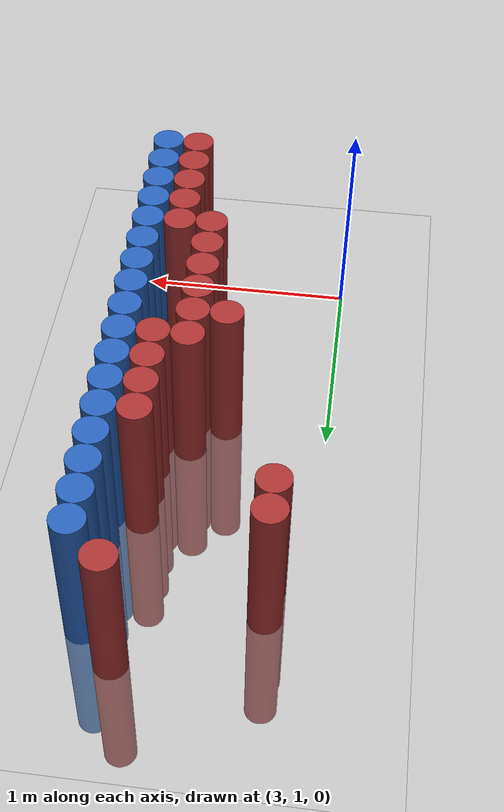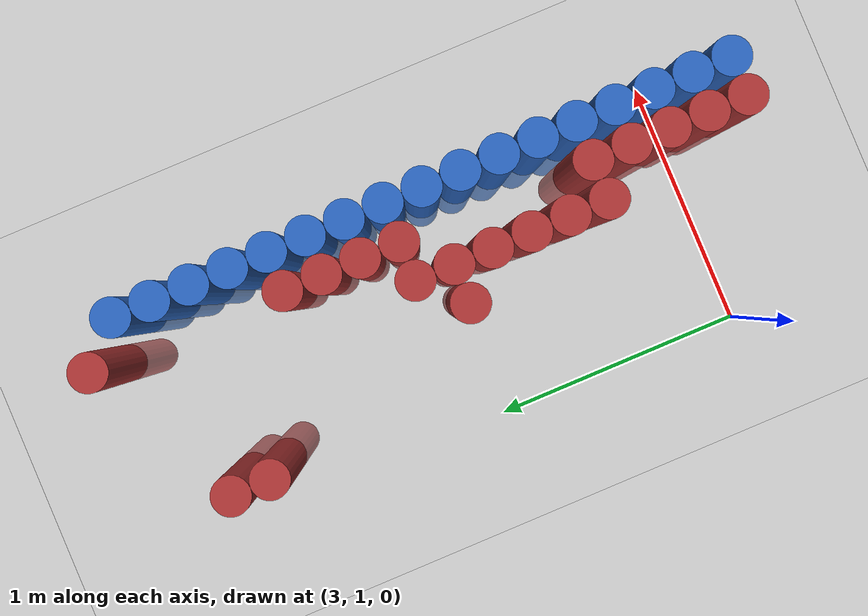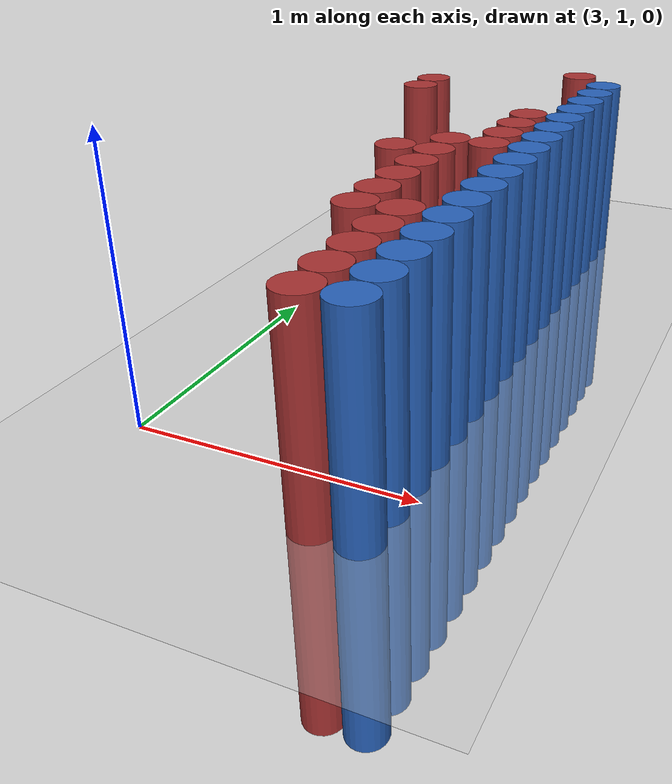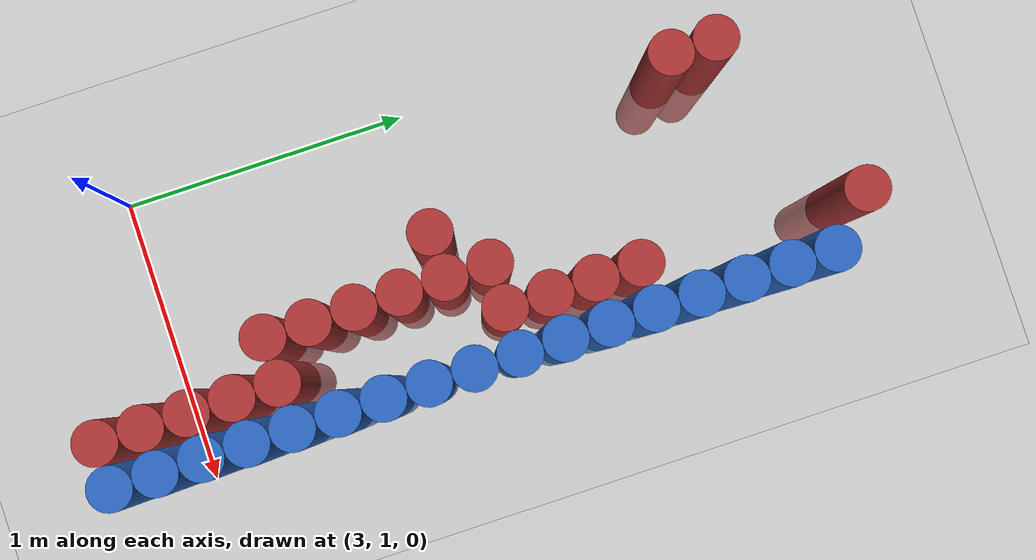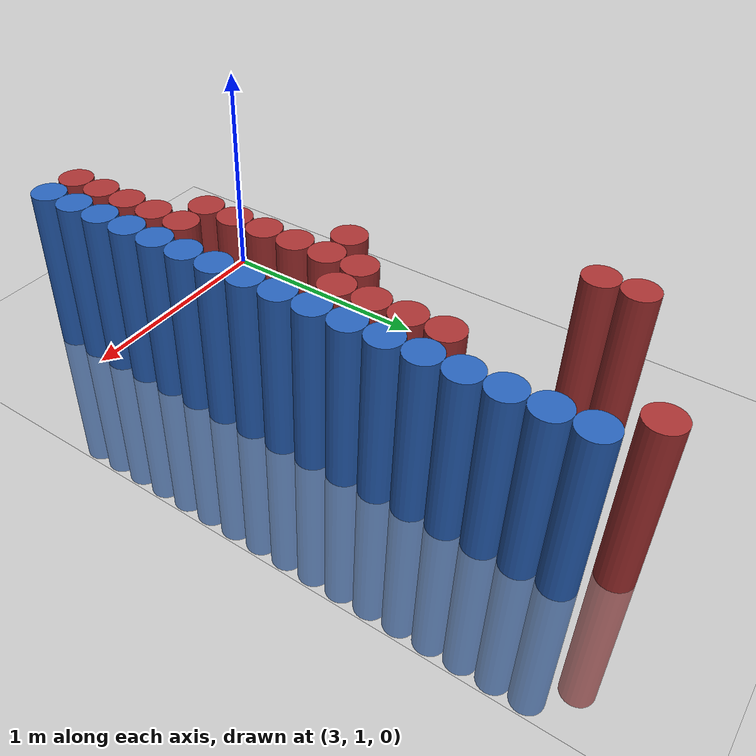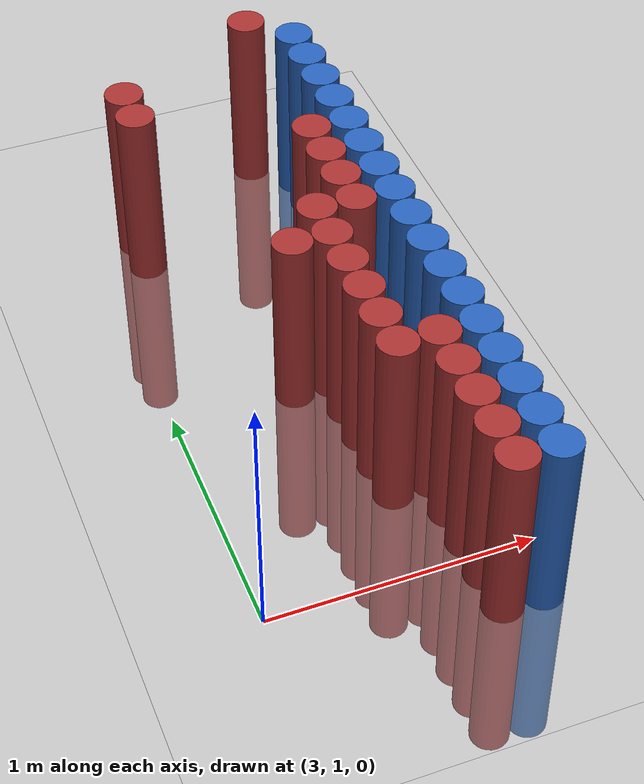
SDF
<sdf version="1.6">
 <world name="default">
  <model name="ground_plane">
   <static>1</static>
   <link name="link">
    <collision name="collision">
     <geometry><plane><normal>0 0 1</normal><size>100 100</size></plane></geometry>
     <surface><friction><ode><mu>100</mu><mu2>50</mu2></ode></friction></surface>
    </collision>
    <visual name="visual">
     <cast_shadows>0</cast_shadows>
     <geometry><plane><normal>0 0 1</normal><size>100 100</size></plane></geometry>
     <material>
      <script><uri>file://media/materials/scripts/gazebo.material</uri><name>Gazebo/Grey</name></script>
     </material>
    </visual>
   </link>
  </model>
  <model name="unit_cylinder_126">
   <static>1</static>
   <pose>3.925000 0.925000 0.000000 0.000000 0.000000 0.000000</pose>
   <link name="link">
    <inertial>
     <mass>1</mass>
     <inertia><ixx>0.145833</ixx><ixy>0</ixy><ixz>0</ixz><iyy>0.145833</iyy><iyz>0</iyz><izz>0.125</izz></inertia>
    </inertial>
    <collision name="collision">
     <geometry><cylinder><radius>0.075000</radius><length>1.5</length></cylinder></geometry>
    </collision>
    <visual name="visual">
     <geometry><cylinder><radius>0.075000</radius><length>1.5</length></cylinder></geometry>
     <material>
      <ambient>0.152000 0.379000 0.720000 1</ambient>
      <diffuse>0.152000 0.379000 0.720000 1</diffuse>
     </material>
     <material>
      <script><name>Gazebo/Grey</name><uri>file://media/materials/scripts/gazebo.material</uri></script>
     </material>
    </visual>
   </link>
  </model>
  <model name="unit_cylinder_128">
   <static>1</static>
   <pose>3.925000 1.075000 0.000000 0.000000 0.000000 0.000000</pose>
   <link name="link">
    <inertial>
     <mass>1</mass>
     <inertia><ixx>0.145833</ixx><ixy>0</ixy><ixz>0</ixz><iyy>0.145833</iyy><iyz>0</iyz><izz>0.125</izz></inertia>
    </inertial>
    <collision name="collision">
     <geometry><cylinder><radius>0.075000</radius><length>1.5</length></cylinder></geometry>
    </collision>
    <visual name="visual">
     <geometry><cylinder><radius>0.075000</radius><length>1.5</length></cylinder></geometry>
     <material>
      <ambient>0.152000 0.379000 0.720000 1</ambient>
      <diffuse>0.152000 0.379000 0.720000 1</diffuse>
     </material>
     <material>
      <script><name>Gazebo/Grey</name><uri>file://media/materials/scripts/gazebo.material</uri></script>
     </material>
    </visual>
   </link>
  </model>
  <model name="unit_cylinder_130">
   <static>1</static>
   <pose>3.925000 1.225000 0.000000 0.000000 0.000000 0.000000</pose>
   <link name="link">
    <inertial>
     <mass>1</mass>
     <inertia><ixx>0.145833</ixx><ixy>0</ixy><ixz>0</ixz><iyy>0.145833</iyy><iyz>0</iyz><izz>0.125</izz></inertia>
    </inertial>
    <collision name="collision">
     <geometry><cylinder><radius>0.075000</radius><length>1.5</length></cylinder></geometry>
    </collision>
    <visual name="visual">
     <geometry><cylinder><radius>0.075000</radius><length>1.5</length></cylinder></geometry>
     <material>
      <ambient>0.152000 0.379000 0.720000 1</ambient>
      <diffuse>0.152000 0.379000 0.720000 1</diffuse>
     </material>
     <material>
      <script><name>Gazebo/Grey</name><uri>file://media/materials/scripts/gazebo.material</uri></script>
     </material>
    </visual>
   </link>
  </model>
  <model name="unit_cylinder_132">
   <static>1</static>
   <pose>3.925000 1.375000 0.000000 0.000000 0.000000 0.000000</pose>
   <link name="link">
    <inertial>
     <mass>1</mass>
     <inertia><ixx>0.145833</ixx><ixy>0</ixy><ixz>0</ixz><iyy>0.145833</iyy><iyz>0</iyz><izz>0.125</izz></inertia>
    </inertial>
    <collision name="collision">
     <geometry><cylinder><radius>0.075000</radius><length>1.5</length></cylinder></geometry>
    </collision>
    <visual name="visual">
     <geometry><cylinder><radius>0.075000</radius><length>1.5</length></cylinder></geometry>
     <material>
      <ambient>0.152000 0.379000 0.720000 1</ambient>
      <diffuse>0.152000 0.379000 0.720000 1</diffuse>
     </material>
     <material>
      <script><name>Gazebo/Grey</name><uri>file://media/materials/scripts/gazebo.material</uri></script>
     </material>
    </visual>
   </link>
  </model>
  <model name="unit_cylinder_134">
   <static>1</static>
   <pose>3.925000 1.525000 0.000000 0.000000 0.000000 0.000000</pose>
   <link name="link">
    <inertial>
     <mass>1</mass>
     <inertia><ixx>0.145833</ixx><ixy>0</ixy><ixz>0</ixz><iyy>0.145833</iyy><iyz>0</iyz><izz>0.125</izz></inertia>
    </inertial>
    <collision name="collision">
     <geometry><cylinder><radius>0.075000</radius><length>1.5</length></cylinder></geometry>
    </collision>
    <visual name="visual">
     <geometry><cylinder><radius>0.075000</radius><length>1.5</length></cylinder></geometry>
     <material>
      <ambient>0.152000 0.379000 0.720000 1</ambient>
      <diffuse>0.152000 0.379000 0.720000 1</diffuse>
     </material>
     <material>
      <script><name>Gazebo/Grey</name><uri>file://media/materials/scripts/gazebo.material</uri></script>
     </material>
    </visual>
   </link>
  </model>
  <model name="unit_cylinder_136">
   <static>1</static>
   <pose>3.925000 1.675000 0.000000 0.000000 0.000000 0.000000</pose>
   <link name="link">
    <inertial>
     <mass>1</mass>
     <inertia><ixx>0.145833</ixx><ixy>0</ixy><ixz>0</ixz><iyy>0.145833</iyy><iyz>0</iyz><izz>0.125</izz></inertia>
    </inertial>
    <collision name="collision">
     <geometry><cylinder><radius>0.075000</radius><length>1.5</length></cylinder></geometry>
    </collision>
    <visual name="visual">
     <geometry><cylinder><radius>0.075000</radius><length>1.5</length></cylinder></geometry>
     <material>
      <ambient>0.152000 0.379000 0.720000 1</ambient>
      <diffuse>0.152000 0.379000 0.720000 1</diffuse>
     </material>
     <material>
      <script><name>Gazebo/Grey</name><uri>file://media/materials/scripts/gazebo.material</uri></script>
     </material>
    </visual>
   </link>
  </model>
  <model name="unit_cylinder_138">
   <static>1</static>
   <pose>3.925000 1.825000 0.000000 0.000000 0.000000 0.000000</pose>
   <link name="link">
    <inertial>
     <mass>1</mass>
     <inertia><ixx>0.145833</ixx><ixy>0</ixy><ixz>0</ixz><iyy>0.145833</iyy><iyz>0</iyz><izz>0.125</izz></inertia>
    </inertial>
    <collision name="collision">
     <geometry><cylinder><radius>0.075000</radius><length>1.5</length></cylinder></geometry>
    </collision>
    <visual name="visual">
     <geometry><cylinder><radius>0.075000</radius><length>1.5</length></cylinder></geometry>
     <material>
      <ambient>0.152000 0.379000 0.720000 1</ambient>
      <diffuse>0.152000 0.379000 0.720000 1</diffuse>
     </material>
     <material>
      <script><name>Gazebo/Grey</name><uri>file://media/materials/scripts/gazebo.material</uri></script>
     </material>
    </visual>
   </link>
  </model>
  <model name="unit_cylinder_140">
   <static>1</static>
   <pose>3.925000 1.975000 0.000000 0.000000 0.000000 0.000000</pose>
   <link name="link">
    <inertial>
     <mass>1</mass>
     <inertia><ixx>0.145833</ixx><ixy>0</ixy><ixz>0</ixz><iyy>0.145833</iyy><iyz>0</iyz><izz>0.125</izz></inertia>
    </inertial>
    <collision name="collision">
     <geometry><cylinder><radius>0.075000</radius><length>1.5</length></cylinder></geometry>
    </collision>
    <visual name="visual">
     <geometry><cylinder><radius>0.075000</radius><length>1.5</length></cylinder></geometry>
     <material>
      <ambient>0.152000 0.379000 0.720000 1</ambient>
      <diffuse>0.152000 0.379000 0.720000 1</diffuse>
     </material>
     <material>
      <script><name>Gazebo/Grey</name><uri>file://media/materials/scripts/gazebo.material</uri></script>
     </material>
    </visual>
   </link>
  </model>
  <model name="unit_cylinder_142">
   <static>1</static>
   <pose>3.925000 2.125000 0.000000 0.000000 0.000000 0.000000</pose>
   <link name="link">
    <inertial>
     <mass>1</mass>
     <inertia><ixx>0.145833</ixx><ixy>0</ixy><ixz>0</ixz><iyy>0.145833</iyy><iyz>0</iyz><izz>0.125</izz></inertia>
    </inertial>
    <collision name="collision">
     <geometry><cylinder><radius>0.075000</radius><length>1.5</length></cylinder></geometry>
    </collision>
    <visual name="visual">
     <geometry><cylinder><radius>0.075000</radius><length>1.5</length></cylinder></geometry>
     <material>
      <ambient>0.152000 0.379000 0.720000 1</ambient>
      <diffuse>0.152000 0.379000 0.720000 1</diffuse>
     </material>
     <material>
      <script><name>Gazebo/Grey</name><uri>file://media/materials/scripts/gazebo.material</uri></script>
     </material>
    </visual>
   </link>
  </model>
  <model name="unit_cylinder_144">
   <static>1</static>
   <pose>3.925000 2.275000 0.000000 0.000000 0.000000 0.000000</pose>
   <link name="link">
    <inertial>
     <mass>1</mass>
     <inertia><ixx>0.145833</ixx><ixy>0</ixy><ixz>0</ixz><iyy>0.145833</iyy><iyz>0</iyz><izz>0.125</izz></inertia>
    </inertial>
    <collision name="collision">
     <geometry><cylinder><radius>0.075000</radius><length>1.5</length></cylinder></geometry>
    </collision>
    <visual name="visual">
     <geometry><cylinder><radius>0.075000</radius><length>1.5</length></cylinder></geometry>
     <material>
      <ambient>0.152000 0.379000 0.720000 1</ambient>
      <diffuse>0.152000 0.379000 0.720000 1</diffuse>
     </material>
     <material>
      <script><name>Gazebo/Grey</name><uri>file://media/materials/scripts/gazebo.material</uri></script>
     </material>
    </visual>
   </link>
  </model>
  <model name="unit_cylinder_146">
   <static>1</static>
   <pose>3.925000 2.425000 0.000000 0.000000 0.000000 0.000000</pose>
   <link name="link">
    <inertial>
     <mass>1</mass>
     <inertia><ixx>0.145833</ixx><ixy>0</ixy><ixz>0</ixz><iyy>0.145833</iyy><iyz>0</iyz><izz>0.125</izz></inertia>
    </inertial>
    <collision name="collision">
     <geometry><cylinder><radius>0.075000</radius><length>1.5</length></cylinder></geometry>
    </collision>
    <visual name="visual">
     <geometry><cylinder><radius>0.075000</radius><length>1.5</length></cylinder></geometry>
     <material>
      <ambient>0.152000 0.379000 0.720000 1</ambient>
      <diffuse>0.152000 0.379000 0.720000 1</diffuse>
     </material>
     <material>
      <script><name>Gazebo/Grey</name><uri>file://media/materials/scripts/gazebo.material</uri></script>
     </material>
    </visual>
   </link>
  </model>
  <model name="unit_cylinder_148">
   <static>1</static>
   <pose>3.925000 2.575000 0.000000 0.000000 0.000000 0.000000</pose>
   <link name="link">
    <inertial>
     <mass>1</mass>
     <inertia><ixx>0.145833</ixx><ixy>0</ixy><ixz>0</ixz><iyy>0.145833</iyy><iyz>0</iyz><izz>0.125</izz></inertia>
    </inertial>
    <collision name="collision">
     <geometry><cylinder><radius>0.075000</radius><length>1.5</length></cylinder></geometry>
    </collision>
    <visual name="visual">
     <geometry><cylinder><radius>0.075000</radius><length>1.5</length></cylinder></geometry>
     <material>
      <ambient>0.152000 0.379000 0.720000 1</ambient>
      <diffuse>0.152000 0.379000 0.720000 1</diffuse>
     </material>
     <material>
      <script><name>Gazebo/Grey</name><uri>file://media/materials/scripts/gazebo.material</uri></script>
     </material>
    </visual>
   </link>
  </model>
  <model name="unit_cylinder_150">
   <static>1</static>
   <pose>3.925000 2.725000 0.000000 0.000000 0.000000 0.000000</pose>
   <link name="link">
    <inertial>
     <mass>1</mass>
     <inertia><ixx>0.145833</ixx><ixy>0</ixy><ixz>0</ixz><iyy>0.145833</iyy><iyz>0</iyz><izz>0.125</izz></inertia>
    </inertial>
    <collision name="collision">
     <geometry><cylinder><radius>0.075000</radius><length>1.5</length></cylinder></geometry>
    </collision>
    <visual name="visual">
     <geometry><cylinder><radius>0.075000</radius><length>1.5</length></cylinder></geometry>
     <material>
      <ambient>0.152000 0.379000 0.720000 1</ambient>
      <diffuse>0.152000 0.379000 0.720000 1</diffuse>
     </material>
     <material>
      <script><name>Gazebo/Grey</name><uri>file://media/materials/scripts/gazebo.material</uri></script>
     </material>
    </visual>
   </link>
  </model>
  <model name="unit_cylinder_152">
   <static>1</static>
   <pose>3.925000 2.875000 0.000000 0.000000 0.000000 0.000000</pose>
   <link name="link">
    <inertial>
     <mass>1</mass>
     <inertia><ixx>0.145833</ixx><ixy>0</ixy><ixz>0</ixz><iyy>0.145833</iyy><iyz>0</iyz><izz>0.125</izz></inertia>
    </inertial>
    <collision name="collision">
     <geometry><cylinder><radius>0.075000</radius><length>1.5</length></cylinder></geometry>
    </collision>
    <visual name="visual">
     <geometry><cylinder><radius>0.075000</radius><length>1.5</length></cylinder></geometry>
     <material>
      <ambient>0.152000 0.379000 0.720000 1</ambient>
      <diffuse>0.152000 0.379000 0.720000 1</diffuse>
     </material>
     <material>
      <script><name>Gazebo/Grey</name><uri>file://media/materials/scripts/gazebo.material</uri></script>
     </material>
    </visual>
   </link>
  </model>
  <model name="unit_cylinder_154">
   <static>1</static>
   <pose>3.925000 3.025000 0.000000 0.000000 0.000000 0.000000</pose>
   <link name="link">
    <inertial>
     <mass>1</mass>
     <inertia><ixx>0.145833</ixx><ixy>0</ixy><ixz>0</ixz><iyy>0.145833</iyy><iyz>0</iyz><izz>0.125</izz></inertia>
    </inertial>
    <collision name="collision">
     <geometry><cylinder><radius>0.075000</radius><length>1.5</length></cylinder></geometry>
    </collision>
    <visual name="visual">
     <geometry><cylinder><radius>0.075000</radius><length>1.5</length></cylinder></geometry>
     <material>
      <ambient>0.152000 0.379000 0.720000 1</ambient>
      <diffuse>0.152000 0.379000 0.720000 1</diffuse>
     </material>
     <material>
      <script><name>Gazebo/Grey</name><uri>file://media/materials/scripts/gazebo.material</uri></script>
     </material>
    </visual>
   </link>
  </model>
  <model name="unit_cylinder_156">
   <static>1</static>
   <pose>3.925000 3.175000 0.000000 0.000000 0.000000 0.000000</pose>
   <link name="link">
    <inertial>
     <mass>1</mass>
     <inertia><ixx>0.145833</ixx><ixy>0</ixy><ixz>0</ixz><iyy>0.145833</iyy><iyz>0</iyz><izz>0.125</izz></inertia>
    </inertial>
    <collision name="collision">
     <geometry><cylinder><radius>0.075000</radius><length>1.5</length></cylinder></geometry>
    </collision>
    <visual name="visual">
     <geometry><cylinder><radius>0.075000</radius><length>1.5</length></cylinder></geometry>
     <material>
      <ambient>0.152000 0.379000 0.720000 1</ambient>
      <diffuse>0.152000 0.379000 0.720000 1</diffuse>
     </material>
     <material>
      <script><name>Gazebo/Grey</name><uri>file://media/materials/scripts/gazebo.material</uri></script>
     </material>
    </visual>
   </link>
  </model>
  <model name="unit_cylinder_384">
   <static>1</static>
   <pose>3.175000 2.875000 0.000000 0.000000 0.000000 0.000000</pose>
   <link name="link">
    <inertial>
     <mass>1</mass>
     <inertia><ixx>0.145833</ixx><ixy>0</ixy><ixz>0</ixz><iyy>0.145833</iyy><iyz>0</iyz><izz>0.125</izz></inertia>
    </inertial>
    <collision name="collision">
     <geometry><cylinder><radius>0.075000</radius><length>1.5</length></cylinder></geometry>
    </collision>
    <visual name="visual">
     <geometry><cylinder><radius>0.075000</radius><length>1.5</length></cylinder></geometry>
     <material>
      <ambient>0.648000 0.192000 0.192000 1</ambient>
      <diffuse>0.648000 0.192000 0.192000 1</diffuse>
     </material>
     <material>
      <script><name>Gazebo/Grey</name><uri>file://media/materials/scripts/gazebo.material</uri></script>
     </material>
    </visual>
   </link>
  </model>
  <model name="unit_cylinder_385">
   <static>1</static>
   <pose>3.175000 3.025000 0.000000 0.000000 0.000000 0.000000</pose>
   <link name="link">
    <inertial>
     <mass>1</mass>
     <inertia><ixx>0.145833</ixx><ixy>0</ixy><ixz>0</ixz><iyy>0.145833</iyy><iyz>0</iyz><izz>0.125</izz></inertia>
    </inertial>
    <collision name="collision">
     <geometry><cylinder><radius>0.075000</radius><length>1.5</length></cylinder></geometry>
    </collision>
    <visual name="visual">
     <geometry><cylinder><radius>0.075000</radius><length>1.5</length></cylinder></geometry>
     <material>
      <ambient>0.648000 0.192000 0.192000 1</ambient>
      <diffuse>0.648000 0.192000 0.192000 1</diffuse>
     </material>
     <material>
      <script><name>Gazebo/Grey</name><uri>file://media/materials/scripts/gazebo.material</uri></script>
     </material>
    </visual>
   </link>
  </model>
  <model name="unit_cylinder_388">
   <static>1</static>
   <pose>3.475000 1.975000 0.000000 0.000000 0.000000 0.000000</pose>
   <link name="link">
    <inertial>
     <mass>1</mass>
     <inertia><ixx>0.145833</ixx><ixy>0</ixy><ixz>0</ixz><iyy>0.145833</iyy><iyz>0</iyz><izz>0.125</izz></inertia>
    </inertial>
    <collision name="collision">
     <geometry><cylinder><radius>0.075000</radius><length>1.5</length></cylinder></geometry>
    </collision>
    <visual name="visual">
     <geometry><cylinder><radius>0.075000</radius><length>1.5</length></cylinder></geometry>
     <material>
      <ambient>0.648000 0.192000 0.192000 1</ambient>
      <diffuse>0.648000 0.192000 0.192000 1</diffuse>
     </material>
     <material>
      <script><name>Gazebo/Grey</name><uri>file://media/materials/scripts/gazebo.material</uri></script>
     </material>
    </visual>
   </link>
  </model>
  <model name="unit_cylinder_394">
   <static>1</static>
   <pose>3.625000 1.375000 0.000000 0.000000 0.000000 0.000000</pose>
   <link name="link">
    <inertial>
     <mass>1</mass>
     <inertia><ixx>0.145833</ixx><ixy>0</ixy><ixz>0</ixz><iyy>0.145833</iyy><iyz>0</iyz><izz>0.125</izz></inertia>
    </inertial>
    <collision name="collision">
     <geometry><cylinder><radius>0.075000</radius><length>1.5</length></cylinder></geometry>
    </collision>
    <visual name="visual">
     <geometry><cylinder><radius>0.075000</radius><length>1.5</length></cylinder></geometry>
     <material>
      <ambient>0.648000 0.192000 0.192000 1</ambient>
      <diffuse>0.648000 0.192000 0.192000 1</diffuse>
     </material>
     <material>
      <script><name>Gazebo/Grey</name><uri>file://media/materials/scripts/gazebo.material</uri></script>
     </material>
    </visual>
   </link>
  </model>
  <model name="unit_cylinder_395">
   <static>1</static>
   <pose>3.625000 1.525000 0.000000 0.000000 0.000000 0.000000</pose>
   <link name="link">
    <inertial>
     <mass>1</mass>
     <inertia><ixx>0.145833</ixx><ixy>0</ixy><ixz>0</ixz><iyy>0.145833</iyy><iyz>0</iyz><izz>0.125</izz></inertia>
    </inertial>
    <collision name="collision">
     <geometry><cylinder><radius>0.075000</radius><length>1.5</length></cylinder></geometry>
    </collision>
    <visual name="visual">
     <geometry><cylinder><radius>0.075000</radius><length>1.5</length></cylinder></geometry>
     <material>
      <ambient>0.648000 0.192000 0.192000 1</ambient>
      <diffuse>0.648000 0.192000 0.192000 1</diffuse>
     </material>
     <material>
      <script><name>Gazebo/Grey</name><uri>file://media/materials/scripts/gazebo.material</uri></script>
     </material>
    </visual>
   </link>
  </model>
  <model name="unit_cylinder_396">
   <static>1</static>
   <pose>3.625000 1.675000 0.000000 0.000000 0.000000 0.000000</pose>
   <link name="link">
    <inertial>
     <mass>1</mass>
     <inertia><ixx>0.145833</ixx><ixy>0</ixy><ixz>0</ixz><iyy>0.145833</iyy><iyz>0</iyz><izz>0.125</izz></inertia>
    </inertial>
    <collision name="collision">
     <geometry><cylinder><radius>0.075000</radius><length>1.5</length></cylinder></geometry>
    </collision>
    <visual name="visual">
     <geometry><cylinder><radius>0.075000</radius><length>1.5</length></cylinder></geometry>
     <material>
      <ambient>0.648000 0.192000 0.192000 1</ambient>
      <diffuse>0.648000 0.192000 0.192000 1</diffuse>
     </material>
     <material>
      <script><name>Gazebo/Grey</name><uri>file://media/materials/scripts/gazebo.material</uri></script>
     </material>
    </visual>
   </link>
  </model>
  <model name="unit_cylinder_397">
   <static>1</static>
   <pose>3.625000 1.825000 0.000000 0.000000 0.000000 0.000000</pose>
   <link name="link">
    <inertial>
     <mass>1</mass>
     <inertia><ixx>0.145833</ixx><ixy>0</ixy><ixz>0</ixz><iyy>0.145833</iyy><iyz>0</iyz><izz>0.125</izz></inertia>
    </inertial>
    <collision name="collision">
     <geometry><cylinder><radius>0.075000</radius><length>1.5</length></cylinder></geometry>
    </collision>
    <visual name="visual">
     <geometry><cylinder><radius>0.075000</radius><length>1.5</length></cylinder></geometry>
     <material>
      <ambient>0.648000 0.192000 0.192000 1</ambient>
      <diffuse>0.648000 0.192000 0.192000 1</diffuse>
     </material>
     <material>
      <script><name>Gazebo/Grey</name><uri>file://media/materials/scripts/gazebo.material</uri></script>
     </material>
    </visual>
   </link>
  </model>
  <model name="unit_cylinder_398">
   <static>1</static>
   <pose>3.625000 1.975000 0.000000 0.000000 0.000000 0.000000</pose>
   <link name="link">
    <inertial>
     <mass>1</mass>
     <inertia><ixx>0.145833</ixx><ixy>0</ixy><ixz>0</ixz><iyy>0.145833</iyy><iyz>0</iyz><izz>0.125</izz></inertia>
    </inertial>
    <collision name="collision">
     <geometry><cylinder><radius>0.075000</radius><length>1.5</length></cylinder></geometry>
    </collision>
    <visual name="visual">
     <geometry><cylinder><radius>0.075000</radius><length>1.5</length></cylinder></geometry>
     <material>
      <ambient>0.648000 0.192000 0.192000 1</ambient>
      <diffuse>0.648000 0.192000 0.192000 1</diffuse>
     </material>
     <material>
      <script><name>Gazebo/Grey</name><uri>file://media/materials/scripts/gazebo.material</uri></script>
     </material>
    </visual>
   </link>
  </model>
  <model name="unit_cylinder_399">
   <static>1</static>
   <pose>3.625000 2.125000 0.000000 0.000000 0.000000 0.000000</pose>
   <link name="link">
    <inertial>
     <mass>1</mass>
     <inertia><ixx>0.145833</ixx><ixy>0</ixy><ixz>0</ixz><iyy>0.145833</iyy><iyz>0</iyz><izz>0.125</izz></inertia>
    </inertial>
    <collision name="collision">
     <geometry><cylinder><radius>0.075000</radius><length>1.5</length></cylinder></geometry>
    </collision>
    <visual name="visual">
     <geometry><cylinder><radius>0.075000</radius><length>1.5</length></cylinder></geometry>
     <material>
      <ambient>0.648000 0.192000 0.192000 1</ambient>
      <diffuse>0.648000 0.192000 0.192000 1</diffuse>
     </material>
     <material>
      <script><name>Gazebo/Grey</name><uri>file://media/materials/scripts/gazebo.material</uri></script>
     </material>
    </visual>
   </link>
  </model>
  <model name="unit_cylinder_407">
   <static>1</static>
   <pose>3.775000 0.775000 0.000000 0.000000 0.000000 0.000000</pose>
   <link name="link">
    <inertial>
     <mass>1</mass>
     <inertia><ixx>0.145833</ixx><ixy>0</ixy><ixz>0</ixz><iyy>0.145833</iyy><iyz>0</iyz><izz>0.125</izz></inertia>
    </inertial>
    <collision name="collision">
     <geometry><cylinder><radius>0.075000</radius><length>1.5</length></cylinder></geometry>
    </collision>
    <visual name="visual">
     <geometry><cylinder><radius>0.075000</radius><length>1.5</length></cylinder></geometry>
     <material>
      <ambient>0.648000 0.192000 0.192000 1</ambient>
      <diffuse>0.648000 0.192000 0.192000 1</diffuse>
     </material>
     <material>
      <script><name>Gazebo/Grey</name><uri>file://media/materials/scripts/gazebo.material</uri></script>
     </material>
    </visual>
   </link>
  </model>
  <model name="unit_cylinder_408">
   <static>1</static>
   <pose>3.775000 0.925000 0.000000 0.000000 0.000000 0.000000</pose>
   <link name="link">
    <inertial>
     <mass>1</mass>
     <inertia><ixx>0.145833</ixx><ixy>0</ixy><ixz>0</ixz><iyy>0.145833</iyy><iyz>0</iyz><izz>0.125</izz></inertia>
    </inertial>
    <collision name="collision">
     <geometry><cylinder><radius>0.075000</radius><length>1.5</length></cylinder></geometry>
    </collision>
    <visual name="visual">
     <geometry><cylinder><radius>0.075000</radius><length>1.5</length></cylinder></geometry>
     <material>
      <ambient>0.648000 0.192000 0.192000 1</ambient>
      <diffuse>0.648000 0.192000 0.192000 1</diffuse>
     </material>
     <material>
      <script><name>Gazebo/Grey</name><uri>file://media/materials/scripts/gazebo.material</uri></script>
     </material>
    </visual>
   </link>
  </model>
  <model name="unit_cylinder_409">
   <static>1</static>
   <pose>3.775000 1.075000 0.000000 0.000000 0.000000 0.000000</pose>
   <link name="link">
    <inertial>
     <mass>1</mass>
     <inertia><ixx>0.145833</ixx><ixy>0</ixy><ixz>0</ixz><iyy>0.145833</iyy><iyz>0</iyz><izz>0.125</izz></inertia>
    </inertial>
    <collision name="collision">
     <geometry><cylinder><radius>0.075000</radius><length>1.5</length></cylinder></geometry>
    </collision>
    <visual name="visual">
     <geometry><cylinder><radius>0.075000</radius><length>1.5</length></cylinder></geometry>
     <material>
      <ambient>0.648000 0.192000 0.192000 1</ambient>
      <diffuse>0.648000 0.192000 0.192000 1</diffuse>
     </material>
     <material>
      <script><name>Gazebo/Grey</name><uri>file://media/materials/scripts/gazebo.material</uri></script>
     </material>
    </visual>
   </link>
  </model>
  <model name="unit_cylinder_410">
   <static>1</static>
   <pose>3.775000 1.225000 0.000000 0.000000 0.000000 0.000000</pose>
   <link name="link">
    <inertial>
     <mass>1</mass>
     <inertia><ixx>0.145833</ixx><ixy>0</ixy><ixz>0</ixz><iyy>0.145833</iyy><iyz>0</iyz><izz>0.125</izz></inertia>
    </inertial>
    <collision name="collision">
     <geometry><cylinder><radius>0.075000</radius><length>1.5</length></cylinder></geometry>
    </collision>
    <visual name="visual">
     <geometry><cylinder><radius>0.075000</radius><length>1.5</length></cylinder></geometry>
     <material>
      <ambient>0.648000 0.192000 0.192000 1</ambient>
      <diffuse>0.648000 0.192000 0.192000 1</diffuse>
     </material>
     <material>
      <script><name>Gazebo/Grey</name><uri>file://media/materials/scripts/gazebo.material</uri></script>
     </material>
    </visual>
   </link>
  </model>
  <model name="unit_cylinder_411">
   <static>1</static>
   <pose>3.775000 1.375000 0.000000 0.000000 0.000000 0.000000</pose>
   <link name="link">
    <inertial>
     <mass>1</mass>
     <inertia><ixx>0.145833</ixx><ixy>0</ixy><ixz>0</ixz><iyy>0.145833</iyy><iyz>0</iyz><izz>0.125</izz></inertia>
    </inertial>
    <collision name="collision">
     <geometry><cylinder><radius>0.075000</radius><length>1.5</length></cylinder></geometry>
    </collision>
    <visual name="visual">
     <geometry><cylinder><radius>0.075000</radius><length>1.5</length></cylinder></geometry>
     <material>
      <ambient>0.648000 0.192000 0.192000 1</ambient>
      <diffuse>0.648000 0.192000 0.192000 1</diffuse>
     </material>
     <material>
      <script><name>Gazebo/Grey</name><uri>file://media/materials/scripts/gazebo.material</uri></script>
     </material>
    </visual>
   </link>
  </model>
  <model name="unit_cylinder_412">
   <static>1</static>
   <pose>3.775000 2.125000 0.000000 0.000000 0.000000 0.000000</pose>
   <link name="link">
    <inertial>
     <mass>1</mass>
     <inertia><ixx>0.145833</ixx><ixy>0</ixy><ixz>0</ixz><iyy>0.145833</iyy><iyz>0</iyz><izz>0.125</izz></inertia>
    </inertial>
    <collision name="collision">
     <geometry><cylinder><radius>0.075000</radius><length>1.5</length></cylinder></geometry>
    </collision>
    <visual name="visual">
     <geometry><cylinder><radius>0.075000</radius><length>1.5</length></cylinder></geometry>
     <material>
      <ambient>0.648000 0.192000 0.192000 1</ambient>
      <diffuse>0.648000 0.192000 0.192000 1</diffuse>
     </material>
     <material>
      <script><name>Gazebo/Grey</name><uri>file://media/materials/scripts/gazebo.material</uri></script>
     </material>
    </visual>
   </link>
  </model>
  <model name="unit_cylinder_413">
   <static>1</static>
   <pose>3.775000 2.275000 0.000000 0.000000 0.000000 0.000000</pose>
   <link name="link">
    <inertial>
     <mass>1</mass>
     <inertia><ixx>0.145833</ixx><ixy>0</ixy><ixz>0</ixz><iyy>0.145833</iyy><iyz>0</iyz><izz>0.125</izz></inertia>
    </inertial>
    <collision name="collision">
     <geometry><cylinder><radius>0.075000</radius><length>1.5</length></cylinder></geometry>
    </collision>
    <visual name="visual">
     <geometry><cylinder><radius>0.075000</radius><length>1.5</length></cylinder></geometry>
     <material>
      <ambient>0.648000 0.192000 0.192000 1</ambient>
      <diffuse>0.648000 0.192000 0.192000 1</diffuse>
     </material>
     <material>
      <script><name>Gazebo/Grey</name><uri>file://media/materials/scripts/gazebo.material</uri></script>
     </material>
    </visual>
   </link>
  </model>
  <model name="unit_cylinder_414">
   <static>1</static>
   <pose>3.775000 2.425000 0.000000 0.000000 0.000000 0.000000</pose>
   <link name="link">
    <inertial>
     <mass>1</mass>
     <inertia><ixx>0.145833</ixx><ixy>0</ixy><ixz>0</ixz><iyy>0.145833</iyy><iyz>0</iyz><izz>0.125</izz></inertia>
    </inertial>
    <collision name="collision">
     <geometry><cylinder><radius>0.075000</radius><length>1.5</length></cylinder></geometry>
    </collision>
    <visual name="visual">
     <geometry><cylinder><radius>0.075000</radius><length>1.5</length></cylinder></geometry>
     <material>
      <ambient>0.648000 0.192000 0.192000 1</ambient>
      <diffuse>0.648000 0.192000 0.192000 1</diffuse>
     </material>
     <material>
      <script><name>Gazebo/Grey</name><uri>file://media/materials/scripts/gazebo.material</uri></script>
     </material>
    </visual>
   </link>
  </model>
  <model name="unit_cylinder_415">
   <static>1</static>
   <pose>3.775000 2.575000 0.000000 0.000000 0.000000 0.000000</pose>
   <link name="link">
    <inertial>
     <mass>1</mass>
     <inertia><ixx>0.145833</ixx><ixy>0</ixy><ixz>0</ixz><iyy>0.145833</iyy><iyz>0</iyz><izz>0.125</izz></inertia>
    </inertial>
    <collision name="collision">
     <geometry><cylinder><radius>0.075000</radius><length>1.5</length></cylinder></geometry>
    </collision>
    <visual name="visual">
     <geometry><cylinder><radius>0.075000</radius><length>1.5</length></cylinder></geometry>
     <material>
      <ambient>0.648000 0.192000 0.192000 1</ambient>
      <diffuse>0.648000 0.192000 0.192000 1</diffuse>
     </material>
     <material>
      <script><name>Gazebo/Grey</name><uri>file://media/materials/scripts/gazebo.material</uri></script>
     </material>
    </visual>
   </link>
  </model>
  <model name="unit_cylinder_416">
   <static>1</static>
   <pose>3.775000 3.325000 0.000000 0.000000 0.000000 0.000000</pose>
   <link name="link">
    <inertial>
     <mass>1</mass>
     <inertia><ixx>0.145833</ixx><ixy>0</ixy><ixz>0</ixz><iyy>0.145833</iyy><iyz>0</iyz><izz>0.125</izz></inertia>
    </inertial>
    <collision name="collision">
     <geometry><cylinder><radius>0.075000</radius><length>1.5</length></cylinder></geometry>
    </collision>
    <visual name="visual">
     <geometry><cylinder><radius>0.075000</radius><length>1.5</length></cylinder></geometry>
     <material>
      <ambient>0.648000 0.192000 0.192000 1</ambient>
      <diffuse>0.648000 0.192000 0.192000 1</diffuse>
     </material>
     <material>
      <script><name>Gazebo/Grey</name><uri>file://media/materials/scripts/gazebo.material</uri></script>
     </material>
    </visual>
   </link>
  </model>
  <model name="unit_cylinder_442">
   <static>1</static>
   <pose>3.925000 0.775000 0.000000 0.000000 0.000000 0.000000</pose>
   <link name="link">
    <inertial>
     <mass>1</mass>
     <inertia><ixx>0.145833</ixx><ixy>0</ixy><ixz>0</ixz><iyy>0.145833</iyy><iyz>0</iyz><izz>0.125</izz></inertia>
    </inertial>
    <collision name="collision">
     <geometry><cylinder><radius>0.075000</radius><length>1.5</length></cylinder></geometry>
    </collision>
    <visual name="visual">
     <geometry><cylinder><radius>0.075000</radius><length>1.5</length></cylinder></geometry>
     <material>
      <ambient>0.152000 0.379000 0.720000 1</ambient>
      <diffuse>0.152000 0.379000 0.720000 1</diffuse>
     </material>
     <material>
      <script><name>Gazebo/Grey</name><uri>file://media/materials/scripts/gazebo.material</uri></script>
     </material>
    </visual>
   </link>
  </model>
  <model name="unit_cylinder_443">
   <static>1</static>
   <pose>3.925000 0.925000 0.000000 0.000000 0.000000 0.000000</pose>
   <link name="link">
    <inertial>
     <mass>1</mass>
     <inertia><ixx>0.145833</ixx><ixy>0</ixy><ixz>0</ixz><iyy>0.145833</iyy><iyz>0</iyz><izz>0.125</izz></inertia>
    </inertial>
    <collision name="collision">
     <geometry><cylinder><radius>0.075000</radius><length>1.5</length></cylinder></geometry>
    </collision>
    <visual name="visual">
     <geometry><cylinder><radius>0.075000</radius><length>1.5</length></cylinder></geometry>
     <material>
      <ambient>0.152000 0.379000 0.720000 1</ambient>
      <diffuse>0.152000 0.379000 0.720000 1</diffuse>
     </material>
     <material>
      <script><name>Gazebo/Grey</name><uri>file://media/materials/scripts/gazebo.material</uri></script>
     </material>
    </visual>
   </link>
  </model>
  <model name="unit_cylinder_444">
   <static>1</static>
   <pose>3.925000 1.075000 0.000000 0.000000 0.000000 0.000000</pose>
   <link name="link">
    <inertial>
     <mass>1</mass>
     <inertia><ixx>0.145833</ixx><ixy>0</ixy><ixz>0</ixz><iyy>0.145833</iyy><iyz>0</iyz><izz>0.125</izz></inertia>
    </inertial>
    <collision name="collision">
     <geometry><cylinder><radius>0.075000</radius><length>1.5</length></cylinder></geometry>
    </collision>
    <visual name="visual">
     <geometry><cylinder><radius>0.075000</radius><length>1.5</length></cylinder></geometry>
     <material>
      <ambient>0.152000 0.379000 0.720000 1</ambient>
      <diffuse>0.152000 0.379000 0.720000 1</diffuse>
     </material>
     <material>
      <script><name>Gazebo/Grey</name><uri>file://media/materials/scripts/gazebo.material</uri></script>
     </material>
    </visual>
   </link>
  </model>
  <model name="unit_cylinder_445">
   <static>1</static>
   <pose>3.925000 1.225000 0.000000 0.000000 0.000000 0.000000</pose>
   <link name="link">
    <inertial>
     <mass>1</mass>
     <inertia><ixx>0.145833</ixx><ixy>0</ixy><ixz>0</ixz><iyy>0.145833</iyy><iyz>0</iyz><izz>0.125</izz></inertia>
    </inertial>
    <collision name="collision">
     <geometry><cylinder><radius>0.075000</radius><length>1.5</length></cylinder></geometry>
    </collision>
    <visual name="visual">
     <geometry><cylinder><radius>0.075000</radius><length>1.5</length></cylinder></geometry>
     <material>
      <ambient>0.152000 0.379000 0.720000 1</ambient>
      <diffuse>0.152000 0.379000 0.720000 1</diffuse>
     </material>
     <material>
      <script><name>Gazebo/Grey</name><uri>file://media/materials/scripts/gazebo.material</uri></script>
     </material>
    </visual>
   </link>
  </model>
  <model name="unit_cylinder_446">
   <static>1</static>
   <pose>3.925000 1.375000 0.000000 0.000000 0.000000 0.000000</pose>
   <link name="link">
    <inertial>
     <mass>1</mass>
     <inertia><ixx>0.145833</ixx><ixy>0</ixy><ixz>0</ixz><iyy>0.145833</iyy><iyz>0</iyz><izz>0.125</izz></inertia>
    </inertial>
    <collision name="collision">
     <geometry><cylinder><radius>0.075000</radius><length>1.5</length></cylinder></geometry>
    </collision>
    <visual name="visual">
     <geometry><cylinder><radius>0.075000</radius><length>1.5</length></cylinder></geometry>
     <material>
      <ambient>0.152000 0.379000 0.720000 1</ambient>
      <diffuse>0.152000 0.379000 0.720000 1</diffuse>
     </material>
     <material>
      <script><name>Gazebo/Grey</name><uri>file://media/materials/scripts/gazebo.material</uri></script>
     </material>
    </visual>
   </link>
  </model>
  <model name="unit_cylinder_447">
   <static>1</static>
   <pose>3.925000 1.525000 0.000000 0.000000 0.000000 0.000000</pose>
   <link name="link">
    <inertial>
     <mass>1</mass>
     <inertia><ixx>0.145833</ixx><ixy>0</ixy><ixz>0</ixz><iyy>0.145833</iyy><iyz>0</iyz><izz>0.125</izz></inertia>
    </inertial>
    <collision name="collision">
     <geometry><cylinder><radius>0.075000</radius><length>1.5</length></cylinder></geometry>
    </collision>
    <visual name="visual">
     <geometry><cylinder><radius>0.075000</radius><length>1.5</length></cylinder></geometry>
     <material>
      <ambient>0.152000 0.379000 0.720000 1</ambient>
      <diffuse>0.152000 0.379000 0.720000 1</diffuse>
     </material>
     <material>
      <script><name>Gazebo/Grey</name><uri>file://media/materials/scripts/gazebo.material</uri></script>
     </material>
    </visual>
   </link>
  </model>
  <model name="unit_cylinder_448">
   <static>1</static>
   <pose>3.925000 1.675000 0.000000 0.000000 0.000000 0.000000</pose>
   <link name="link">
    <inertial>
     <mass>1</mass>
     <inertia><ixx>0.145833</ixx><ixy>0</ixy><ixz>0</ixz><iyy>0.145833</iyy><iyz>0</iyz><izz>0.125</izz></inertia>
    </inertial>
    <collision name="collision">
     <geometry><cylinder><radius>0.075000</radius><length>1.5</length></cylinder></geometry>
    </collision>
    <visual name="visual">
     <geometry><cylinder><radius>0.075000</radius><length>1.5</length></cylinder></geometry>
     <material>
      <ambient>0.152000 0.379000 0.720000 1</ambient>
      <diffuse>0.152000 0.379000 0.720000 1</diffuse>
     </material>
     <material>
      <script><name>Gazebo/Grey</name><uri>file://media/materials/scripts/gazebo.material</uri></script>
     </material>
    </visual>
   </link>
  </model>
  <model name="unit_cylinder_449">
   <static>1</static>
   <pose>3.925000 1.825000 0.000000 0.000000 0.000000 0.000000</pose>
   <link name="link">
    <inertial>
     <mass>1</mass>
     <inertia><ixx>0.145833</ixx><ixy>0</ixy><ixz>0</ixz><iyy>0.145833</iyy><iyz>0</iyz><izz>0.125</izz></inertia>
    </inertial>
    <collision name="collision">
     <geometry><cylinder><radius>0.075000</radius><length>1.5</length></cylinder></geometry>
    </collision>
    <visual name="visual">
     <geometry><cylinder><radius>0.075000</radius><length>1.5</length></cylinder></geometry>
     <material>
      <ambient>0.152000 0.379000 0.720000 1</ambient>
      <diffuse>0.152000 0.379000 0.720000 1</diffuse>
     </material>
     <material>
      <script><name>Gazebo/Grey</name><uri>file://media/materials/scripts/gazebo.material</uri></script>
     </material>
    </visual>
   </link>
  </model>
  <model name="unit_cylinder_450">
   <static>1</static>
   <pose>3.925000 1.975000 0.000000 0.000000 0.000000 0.000000</pose>
   <link name="link">
    <inertial>
     <mass>1</mass>
     <inertia><ixx>0.145833</ixx><ixy>0</ixy><ixz>0</ixz><iyy>0.145833</iyy><iyz>0</iyz><izz>0.125</izz></inertia>
    </inertial>
    <collision name="collision">
     <geometry><cylinder><radius>0.075000</radius><length>1.5</length></cylinder></geometry>
    </collision>
    <visual name="visual">
     <geometry><cylinder><radius>0.075000</radius><length>1.5</length></cylinder></geometry>
     <material>
      <ambient>0.152000 0.379000 0.720000 1</ambient>
      <diffuse>0.152000 0.379000 0.720000 1</diffuse>
     </material>
     <material>
      <script><name>Gazebo/Grey</name><uri>file://media/materials/scripts/gazebo.material</uri></script>
     </material>
    </visual>
   </link>
  </model>
  <model name="unit_cylinder_451">
   <static>1</static>
   <pose>3.925000 2.125000 0.000000 0.000000 0.000000 0.000000</pose>
   <link name="link">
    <inertial>
     <mass>1</mass>
     <inertia><ixx>0.145833</ixx><ixy>0</ixy><ixz>0</ixz><iyy>0.145833</iyy><iyz>0</iyz><izz>0.125</izz></inertia>
    </inertial>
    <collision name="collision">
     <geometry><cylinder><radius>0.075000</radius><length>1.5</length></cylinder></geometry>
    </collision>
    <visual name="visual">
     <geometry><cylinder><radius>0.075000</radius><length>1.5</length></cylinder></geometry>
     <material>
      <ambient>0.152000 0.379000 0.720000 1</ambient>
      <diffuse>0.152000 0.379000 0.720000 1</diffuse>
     </material>
     <material>
      <script><name>Gazebo/Grey</name><uri>file://media/materials/scripts/gazebo.material</uri></script>
     </material>
    </visual>
   </link>
  </model>
  <model name="unit_cylinder_452">
   <static>1</static>
   <pose>3.925000 2.275000 0.000000 0.000000 0.000000 0.000000</pose>
   <link name="link">
    <inertial>
     <mass>1</mass>
     <inertia><ixx>0.145833</ixx><ixy>0</ixy><ixz>0</ixz><iyy>0.145833</iyy><iyz>0</iyz><izz>0.125</izz></inertia>
    </inertial>
    <collision name="collision">
     <geometry><cylinder><radius>0.075000</radius><length>1.5</length></cylinder></geometry>
    </collision>
    <visual name="visual">
     <geometry><cylinder><radius>0.075000</radius><length>1.5</length></cylinder></geometry>
     <material>
      <ambient>0.152000 0.379000 0.720000 1</ambient>
      <diffuse>0.152000 0.379000 0.720000 1</diffuse>
     </material>
     <material>
      <script><name>Gazebo/Grey</name><uri>file://media/materials/scripts/gazebo.material</uri></script>
     </material>
    </visual>
   </link>
  </model>
  <model name="unit_cylinder_453">
   <static>1</static>
   <pose>3.925000 2.425000 0.000000 0.000000 0.000000 0.000000</pose>
   <link name="link">
    <inertial>
     <mass>1</mass>
     <inertia><ixx>0.145833</ixx><ixy>0</ixy><ixz>0</ixz><iyy>0.145833</iyy><iyz>0</iyz><izz>0.125</izz></inertia>
    </inertial>
    <collision name="collision">
     <geometry><cylinder><radius>0.075000</radius><length>1.5</length></cylinder></geometry>
    </collision>
    <visual name="visual">
     <geometry><cylinder><radius>0.075000</radius><length>1.5</length></cylinder></geometry>
     <material>
      <ambient>0.152000 0.379000 0.720000 1</ambient>
      <diffuse>0.152000 0.379000 0.720000 1</diffuse>
     </material>
     <material>
      <script><name>Gazebo/Grey</name><uri>file://media/materials/scripts/gazebo.material</uri></script>
     </material>
    </visual>
   </link>
  </model>
  <model name="unit_cylinder_454">
   <static>1</static>
   <pose>3.925000 2.575000 0.000000 0.000000 0.000000 0.000000</pose>
   <link name="link">
    <inertial>
     <mass>1</mass>
     <inertia><ixx>0.145833</ixx><ixy>0</ixy><ixz>0</ixz><iyy>0.145833</iyy><iyz>0</iyz><izz>0.125</izz></inertia>
    </inertial>
    <collision name="collision">
     <geometry><cylinder><radius>0.075000</radius><length>1.5</length></cylinder></geometry>
    </collision>
    <visual name="visual">
     <geometry><cylinder><radius>0.075000</radius><length>1.5</length></cylinder></geometry>
     <material>
      <ambient>0.152000 0.379000 0.720000 1</ambient>
      <diffuse>0.152000 0.379000 0.720000 1</diffuse>
     </material>
     <material>
      <script><name>Gazebo/Grey</name><uri>file://media/materials/scripts/gazebo.material</uri></script>
     </material>
    </visual>
   </link>
  </model>
  <model name="unit_cylinder_455">
   <static>1</static>
   <pose>3.925000 2.725000 0.000000 0.000000 0.000000 0.000000</pose>
   <link name="link">
    <inertial>
     <mass>1</mass>
     <inertia><ixx>0.145833</ixx><ixy>0</ixy><ixz>0</ixz><iyy>0.145833</iyy><iyz>0</iyz><izz>0.125</izz></inertia>
    </inertial>
    <collision name="collision">
     <geometry><cylinder><radius>0.075000</radius><length>1.5</length></cylinder></geometry>
    </collision>
    <visual name="visual">
     <geometry><cylinder><radius>0.075000</radius><length>1.5</length></cylinder></geometry>
     <material>
      <ambient>0.152000 0.379000 0.720000 1</ambient>
      <diffuse>0.152000 0.379000 0.720000 1</diffuse>
     </material>
     <material>
      <script><name>Gazebo/Grey</name><uri>file://media/materials/scripts/gazebo.material</uri></script>
     </material>
    </visual>
   </link>
  </model>
  <model name="unit_cylinder_456">
   <static>1</static>
   <pose>3.925000 2.875000 0.000000 0.000000 0.000000 0.000000</pose>
   <link name="link">
    <inertial>
     <mass>1</mass>
     <inertia><ixx>0.145833</ixx><ixy>0</ixy><ixz>0</ixz><iyy>0.145833</iyy><iyz>0</iyz><izz>0.125</izz></inertia>
    </inertial>
    <collision name="collision">
     <geometry><cylinder><radius>0.075000</radius><length>1.5</length></cylinder></geometry>
    </collision>
    <visual name="visual">
     <geometry><cylinder><radius>0.075000</radius><length>1.5</length></cylinder></geometry>
     <material>
      <ambient>0.152000 0.379000 0.720000 1</ambient>
      <diffuse>0.152000 0.379000 0.720000 1</diffuse>
     </material>
     <material>
      <script><name>Gazebo/Grey</name><uri>file://media/materials/scripts/gazebo.material</uri></script>
     </material>
    </visual>
   </link>
  </model>
  <model name="unit_cylinder_457">
   <static>1</static>
   <pose>3.925000 3.025000 0.000000 0.000000 0.000000 0.000000</pose>
   <link name="link">
    <inertial>
     <mass>1</mass>
     <inertia><ixx>0.145833</ixx><ixy>0</ixy><ixz>0</ixz><iyy>0.145833</iyy><iyz>0</iyz><izz>0.125</izz></inertia>
    </inertial>
    <collision name="collision">
     <geometry><cylinder><radius>0.075000</radius><length>1.5</length></cylinder></geometry>
    </collision>
    <visual name="visual">
     <geometry><cylinder><radius>0.075000</radius><length>1.5</length></cylinder></geometry>
     <material>
      <ambient>0.152000 0.379000 0.720000 1</ambient>
      <diffuse>0.152000 0.379000 0.720000 1</diffuse>
     </material>
     <material>
      <script><name>Gazebo/Grey</name><uri>file://media/materials/scripts/gazebo.material</uri></script>
     </material>
    </visual>
   </link>
  </model>
  <model name="unit_cylinder_458">
   <static>1</static>
   <pose>3.925000 3.175000 0.000000 0.000000 0.000000 0.000000</pose>
   <link name="link">
    <inertial>
     <mass>1</mass>
     <inertia><ixx>0.145833</ixx><ixy>0</ixy><ixz>0</ixz><iyy>0.145833</iyy><iyz>0</iyz><izz>0.125</izz></inertia>
    </inertial>
    <collision name="collision">
     <geometry><cylinder><radius>0.075000</radius><length>1.5</length></cylinder></geometry>
    </collision>
    <visual name="visual">
     <geometry><cylinder><radius>0.075000</radius><length>1.5</length></cylinder></geometry>
     <material>
      <ambient>0.152000 0.379000 0.720000 1</ambient>
      <diffuse>0.152000 0.379000 0.720000 1</diffuse>
     </material>
     <material>
      <script><name>Gazebo/Grey</name><uri>file://media/materials/scripts/gazebo.material</uri></script>
     </material>
    </visual>
   </link>
  </model>
 </world>
</sdf>
